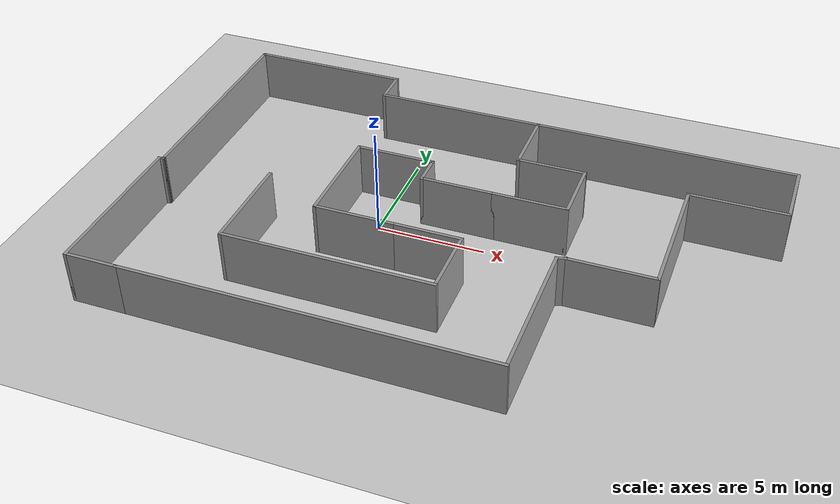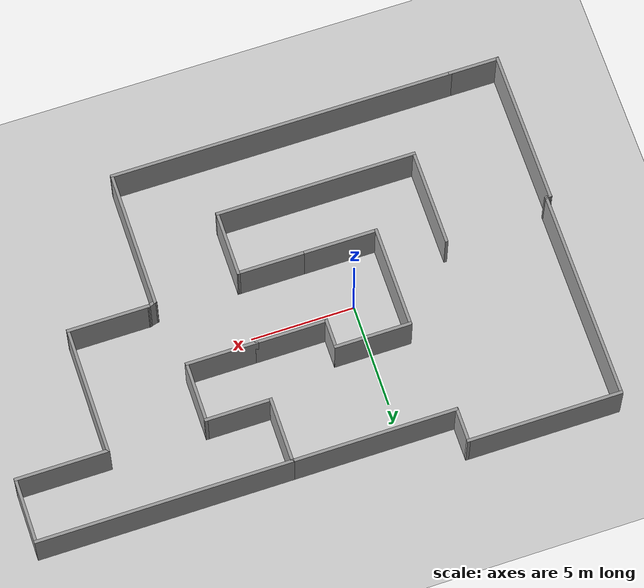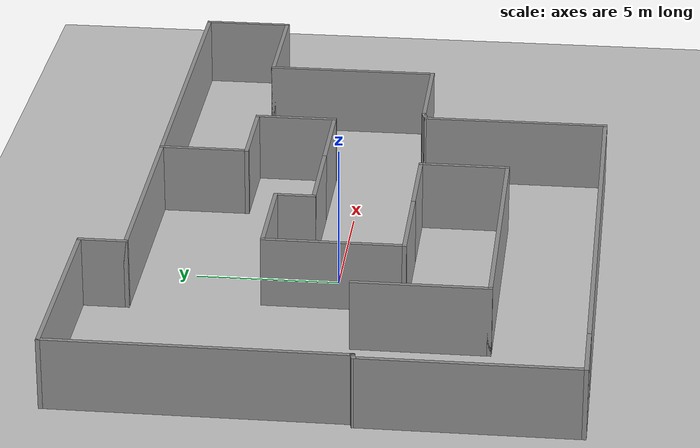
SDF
<sdf version="1.7">
 <world name="default">
  <light name="sun" type="directional">
   <pose>0 0 10 0 -0 0</pose>
   <diffuse>0.8 0.8 0.8 1</diffuse>
   <specular>0.2 0.2 0.2 1</specular>
   <attenuation>
    <range>1000</range>
    <constant>0.9</constant>
    <linear>0.01</linear>
    <quadratic>0.001</quadratic>
   </attenuation>
   <direction>-0.5 0.1 -0.9</direction>
   <spot><inner_angle>0</inner_angle><outer_angle>0</outer_angle><falloff>0</falloff></spot>
  </light>
  <model name="ground_plane">
   <static>1</static>
   <link name="link">
    <collision name="collision">
     <geometry><plane><normal>0 0 1</normal><size>100 100</size></plane></geometry>
     <surface><friction><ode><mu>100</mu><mu2>50</mu2></ode></friction></surface>
    </collision>
    <visual name="visual">
     <cast_shadows>0</cast_shadows>
     <geometry><plane><normal>0 0 1</normal><size>100 100</size></plane></geometry>
     <material>
      <script><uri>file://media/materials/scripts/gazebo.material</uri><name>Gazebo/Grey</name></script>
     </material>
    </visual>
   </link>
  </model>
  <gravity>0 0 -9.8</gravity>
  <magnetic_field>6e-06 2.3e-05 -4.2e-05</magnetic_field>
  <atmosphere type="adiabatic"/>
  <physics type="ode">
   <max_step_size>0.001</max_step_size>
   <real_time_factor>1</real_time_factor>
   <real_time_update_rate>1000</real_time_update_rate>
  </physics>
  <scene><ambient>0.4 0.4 0.4 1</ambient><background>0.7 0.7 0.7 1</background><shadows>1</shadows></scene>
  <audio><device>default</device></audio>
  <spherical_coordinates>
   <surface_model>EARTH_WGS84</surface_model>
   <latitude_deg>0</latitude_deg>
   <longitude_deg>0</longitude_deg>
   <elevation>0</elevation>
   <heading_deg>0</heading_deg>
  </spherical_coordinates>
  <model name="Untitled">
   <pose>3.65462 -0.130618 0 0 -0 0</pose>
   <link name="Wall_0">
    <collision name="Wall_0_Collision">
     <geometry><box><size>3.75 0.15 2.5</size></box></geometry>
     <pose>0 0 1.25 0 -0 0</pose>
    </collision>
    <visual name="Wall_0_Visual">
     <pose>0 0 1.25 0 -0 0</pose>
     <geometry><box><size>3.75 0.15 2.5</size></box></geometry>
     <material>
      <script><uri>file://media/materials/scripts/gazebo.material</uri><name>Gazebo/Grey</name></script>
      <ambient>1 1 1 1</ambient>
     </material>
     <meta><layer>0</layer></meta>
    </visual>
    <pose>-3.74462 -2.29938 0 0 -0 3.14159</pose>
   </link>
   <link name="Wall_1">
    <collision name="Wall_1_Collision">
     <geometry><box><size>5 0.15 2.5</size></box></geometry>
     <pose>0 0 1.25 0 -0 0</pose>
    </collision>
    <visual name="Wall_1_Visual">
     <pose>0 0 1.25 0 -0 0</pose>
     <geometry><box><size>5 0.15 2.5</size></box></geometry>
     <material>
      <script><uri>file://media/materials/scripts/gazebo.material</uri><name>Gazebo/Grey</name></script>
      <ambient>1 1 1 1</ambient>
     </material>
     <meta><layer>0</layer></meta>
    </visual>
    <pose>-5.54462 0.125618 0 0 -0 1.5708</pose>
   </link>
   <link name="Wall_11">
    <collision name="Wall_11_Collision">
     <geometry><box><size>3.5 0.15 2.5</size></box></geometry>
     <pose>0 0 1.25 0 -0 0</pose>
    </collision>
    <visual name="Wall_11_Visual">
     <pose>0 0 1.25 0 -0 0</pose>
     <geometry><box><size>3.5 0.15 2.5</size></box></geometry>
     <material>
      <script><uri>file://media/materials/scripts/gazebo.material</uri><name>Gazebo/Grey</name></script>
      <ambient>1 1 1 1</ambient>
     </material>
     <meta><layer>0</layer></meta>
    </visual>
    <pose>3.08039 1.20062 0 0 -0 0</pose>
   </link>
   <link name="Wall_12">
    <collision name="Wall_12_Collision">
     <geometry><box><size>3 0.15 2.5</size></box></geometry>
     <pose>0 0 1.25 0 -0 0</pose>
    </collision>
    <visual name="Wall_12_Visual">
     <pose>0 0 1.25 0 -0 0</pose>
     <geometry><box><size>3 0.15 2.5</size></box></geometry>
     <material>
      <script><uri>file://media/materials/scripts/gazebo.material</uri><name>Gazebo/Grey</name></script>
      <ambient>1 1 1 1</ambient>
     </material>
     <meta><layer>0</layer></meta>
    </visual>
    <pose>4.75539 2.62562 0 0 -0 1.5708</pose>
   </link>
   <link name="Wall_13">
    <collision name="Wall_13_Collision">
     <geometry><box><size>3.25 0.15 2.5</size></box></geometry>
     <pose>0 0 1.25 0 -0 0</pose>
    </collision>
    <visual name="Wall_13_Visual">
     <pose>0 0 1.25 0 -0 0</pose>
     <geometry><box><size>3.25 0.15 2.5</size></box></geometry>
     <material>
      <script><uri>file://media/materials/scripts/gazebo.material</uri><name>Gazebo/Grey</name></script>
      <ambient>1 1 1 1</ambient>
     </material>
     <meta><layer>0</layer></meta>
    </visual>
    <pose>3.20539 4.05062 0 0 -0 3.14159</pose>
   </link>
   <link name="Wall_14">
    <collision name="Wall_14_Collision">
     <geometry><box><size>3.25 0.15 2.5</size></box></geometry>
     <pose>0 0 1.25 0 -0 0</pose>
    </collision>
    <visual name="Wall_14_Visual">
     <pose>0 0 1.25 0 -0 0</pose>
     <geometry><box><size>3.25 0.15 2.5</size></box></geometry>
     <material>
      <script><uri>file://media/materials/scripts/gazebo.material</uri><name>Gazebo/Grey</name></script>
      <ambient>1 1 1 1</ambient>
     </material>
     <meta><layer>0</layer></meta>
    </visual>
    <pose>1.65539 5.60062 0 0 -0 1.5708</pose>
   </link>
   <link name="Wall_16">
    <collision name="Wall_16_Collision">
     <geometry><box><size>6.75 0.15 2.5</size></box></geometry>
     <pose>0 0 1.25 0 -0 0</pose>
    </collision>
    <visual name="Wall_16_Visual">
     <pose>0 0 1.25 0 -0 0</pose>
     <geometry><box><size>6.75 0.15 2.5</size></box></geometry>
     <material>
      <script><uri>file://media/materials/scripts/gazebo.material</uri><name>Gazebo/Grey</name></script>
      <ambient>1 1 1 1</ambient>
     </material>
     <meta><layer>0</layer></meta>
    </visual>
    <pose>5.21127 -5.45062 0 0 -0 -1.5708</pose>
   </link>
   <link name="Wall_17">
    <collision name="Wall_17_Collision">
     <geometry><box><size>16.75 0.15 2.5</size></box></geometry>
     <pose>0 0 1.25 0 -0 0</pose>
    </collision>
    <visual name="Wall_17_Visual">
     <pose>0 0 1.25 0 -0 0</pose>
     <geometry><box><size>16.75 0.15 2.5</size></box></geometry>
     <material>
      <script><uri>file://media/materials/scripts/gazebo.material</uri><name>Gazebo/Grey</name></script>
      <ambient>1 1 1 1</ambient>
     </material>
     <meta><layer>0</layer></meta>
    </visual>
    <pose>-3.08873 -8.75062 0 0 -0 3.14159</pose>
   </link>
   <link name="Wall_18">
    <collision name="Wall_18_Collision">
     <geometry><box><size>2.5 0.15 2.5</size></box></geometry>
     <pose>0 0 1.25 0 -0 0</pose>
    </collision>
    <visual name="Wall_18_Visual">
     <pose>0 0 1.25 0 -0 0</pose>
     <geometry><box><size>2.5 0.15 2.5</size></box></geometry>
     <material>
      <script><uri>file://media/materials/scripts/gazebo.material</uri><name>Gazebo/Grey</name></script>
      <ambient>1 1 1 1</ambient>
     </material>
     <meta><layer>0</layer></meta>
    </visual>
    <pose>-12.5637 -8.75062 0 0 -0 3.14159</pose>
   </link>
   <link name="Wall_19">
    <collision name="Wall_19_Collision">
     <geometry><box><size>7.5 0.15 2.5</size></box></geometry>
     <pose>0 0 1.25 0 -0 0</pose>
    </collision>
    <visual name="Wall_19_Visual">
     <pose>0 0 1.25 0 -0 0</pose>
     <geometry><box><size>7.5 0.15 2.5</size></box></geometry>
     <material>
      <script><uri>file://media/materials/scripts/gazebo.material</uri><name>Gazebo/Grey</name></script>
      <ambient>1 1 1 1</ambient>
     </material>
     <meta><layer>0</layer></meta>
    </visual>
    <pose>-13.7387 -5.07562 0 0 -0 1.5708</pose>
   </link>
   <link name="Wall_2">
    <collision name="Wall_2_Collision">
     <geometry><box><size>3.75 0.15 2.5</size></box></geometry>
     <pose>0 0 1.25 0 -0 0</pose>
    </collision>
    <visual name="Wall_2_Visual">
     <pose>0 0 1.25 0 -0 0</pose>
     <geometry><box><size>3.75 0.15 2.5</size></box></geometry>
     <material>
      <script><uri>file://media/materials/scripts/gazebo.material</uri><name>Gazebo/Grey</name></script>
      <ambient>1 1 1 1</ambient>
     </material>
     <meta><layer>0</layer></meta>
    </visual>
    <pose>-3.74462 2.55062 0 0 -0 0</pose>
   </link>
   <link name="Wall_22">
    <collision name="Wall_22_Collision">
     <geometry><box><size>12.25 0.15 2.5</size></box></geometry>
     <pose>0 0 1.25 0 -0 0</pose>
    </collision>
    <visual name="Wall_22_Visual">
     <pose>0 0 1.25 0 -0 0</pose>
     <geometry><box><size>12.25 0.15 2.5</size></box></geometry>
     <material>
      <script><uri>file://media/materials/scripts/gazebo.material</uri><name>Gazebo/Grey</name></script>
      <ambient>1 1 1 1</ambient>
     </material>
     <meta><layer>0</layer></meta>
    </visual>
    <pose>7.70538 7.15062 0 0 -0 0</pose>
   </link>
   <link name="Wall_23">
    <collision name="Wall_23_Collision">
     <geometry><box><size>3.25 0.15 2.5</size></box></geometry>
     <pose>0 0 1.25 0 -0 0</pose>
    </collision>
    <visual name="Wall_23_Visual">
     <pose>0 0 1.25 0 -0 0</pose>
     <geometry><box><size>3.25 0.15 2.5</size></box></geometry>
     <material>
      <script><uri>file://media/materials/scripts/gazebo.material</uri><name>Gazebo/Grey</name></script>
      <ambient>1 1 1 1</ambient>
     </material>
     <meta><layer>0</layer></meta>
    </visual>
    <pose>13.7554 5.60062 0 0 -0 -1.5708</pose>
   </link>
   <link name="Wall_24">
    <collision name="Wall_24_Collision">
     <geometry><box><size>4.5 0.15 2.5</size></box></geometry>
     <pose>0 0 1.25 0 -0 0</pose>
    </collision>
    <visual name="Wall_24_Visual">
     <pose>0 0 1.25 0 -0 0</pose>
     <geometry><box><size>4.5 0.15 2.5</size></box></geometry>
     <material>
      <script><uri>file://media/materials/scripts/gazebo.material</uri><name>Gazebo/Grey</name></script>
      <ambient>1 1 1 1</ambient>
     </material>
     <meta><layer>0</layer></meta>
    </visual>
    <pose>11.5804 4.05062 0 0 -0 3.14159</pose>
   </link>
   <link name="Wall_25">
    <collision name="Wall_25_Collision">
     <geometry><box><size>6.25 0.15 2.5</size></box></geometry>
     <pose>0 0 1.25 0 -0 0</pose>
    </collision>
    <visual name="Wall_25_Visual">
     <pose>0 0 1.25 0 -0 0</pose>
     <geometry><box><size>6.25 0.15 2.5</size></box></geometry>
     <material>
      <script><uri>file://media/materials/scripts/gazebo.material</uri><name>Gazebo/Grey</name></script>
      <ambient>1 1 1 1</ambient>
     </material>
     <meta><layer>0</layer></meta>
    </visual>
    <pose>9.40539 1.00062 0 0 -0 -1.5708</pose>
   </link>
   <link name="Wall_26">
    <collision name="Wall_26_Collision">
     <geometry><box><size>4 0.15 2.5</size></box></geometry>
     <pose>0 0 1.25 0 -0 0</pose>
    </collision>
    <visual name="Wall_26_Visual">
     <pose>0 0 1.25 0 -0 0</pose>
     <geometry><box><size>4 0.15 2.5</size></box></geometry>
     <material>
      <script><uri>file://media/materials/scripts/gazebo.material</uri><name>Gazebo/Grey</name></script>
      <ambient>1 1 1 1</ambient>
     </material>
     <meta><layer>0</layer></meta>
    </visual>
    <pose>7.48039 -2.04938 0 0 -0 3.14159</pose>
   </link>
   <link name="Wall_28">
    <collision name="Wall_28_Collision">
     <geometry><box><size>0.508696 0.15 2.5</size></box></geometry>
     <pose>0 0 1.25 0 -0 0</pose>
    </collision>
    <visual name="Wall_28_Visual">
     <pose>0 0 1.25 0 -0 0</pose>
     <geometry><box><size>0.508696 0.15 2.5</size></box></geometry>
     <material>
      <script><uri>file://media/materials/scripts/gazebo.material</uri><name>Gazebo/Grey</name></script>
      <ambient>1 1 1 1</ambient>
     </material>
     <meta><layer>0</layer></meta>
    </visual>
    <pose>5.38333 -2.1 0 0 -0 0.286122</pose>
   </link>
   <link name="Wall_3">
    <collision name="Wall_3_Collision">
     <geometry><box><size>1.5 0.15 2.5</size></box></geometry>
     <pose>0 0 1.25 0 -0 0</pose>
    </collision>
    <visual name="Wall_3_Visual">
     <pose>0 0 1.25 0 -0 0</pose>
     <geometry><box><size>1.5 0.15 2.5</size></box></geometry>
     <material>
      <script><uri>file://media/materials/scripts/gazebo.material</uri><name>Gazebo/Grey</name></script>
      <ambient>1 1 1 1</ambient>
     </material>
     <meta><layer>0</layer></meta>
    </visual>
    <pose>-1.94461 1.87562 0 0 -0 -1.5708</pose>
   </link>
   <link name="Wall_31">
    <collision name="Wall_31_Collision">
     <geometry><box><size>8 0.15 2.5</size></box></geometry>
     <pose>0 0 1.25 0 -0 0</pose>
    </collision>
    <visual name="Wall_31_Visual">
     <pose>0 0 1.25 0 -0 0</pose>
     <geometry><box><size>8 0.15 2.5</size></box></geometry>
     <material>
      <script><uri>file://media/materials/scripts/gazebo.material</uri><name>Gazebo/Grey</name></script>
      <ambient>1 1 1 1</ambient>
     </material>
     <meta><layer>0</layer></meta>
    </visual>
    <pose>-2.26961 7.15062 0 0 -0 3.14159</pose>
   </link>
   <link name="Wall_32">
    <collision name="Wall_32_Collision">
     <geometry><box><size>1.75 0.15 2.5</size></box></geometry>
     <pose>0 0 1.25 0 -0 0</pose>
    </collision>
    <visual name="Wall_32_Visual">
     <pose>0 0 1.25 0 -0 0</pose>
     <geometry><box><size>1.75 0.15 2.5</size></box></geometry>
     <material>
      <script><uri>file://media/materials/scripts/gazebo.material</uri><name>Gazebo/Grey</name></script>
      <ambient>1 1 1 1</ambient>
     </material>
     <meta><layer>0</layer></meta>
    </visual>
    <pose>-6.19461 7.95062 0 0 -0 1.5708</pose>
   </link>
   <link name="Wall_33">
    <collision name="Wall_33_Collision">
     <geometry><box><size>7.5 0.15 2.5</size></box></geometry>
     <pose>0 0 1.25 0 -0 0</pose>
    </collision>
    <visual name="Wall_33_Visual">
     <pose>0 0 1.25 0 -0 0</pose>
     <geometry><box><size>7.5 0.15 2.5</size></box></geometry>
     <material>
      <script><uri>file://media/materials/scripts/gazebo.material</uri><name>Gazebo/Grey</name></script>
      <ambient>1 1 1 1</ambient>
     </material>
     <meta><layer>0</layer></meta>
    </visual>
    <pose>-9.86961 8.75062 0 0 -0 3.14159</pose>
   </link>
   <link name="Wall_34">
    <collision name="Wall_34_Collision">
     <geometry><box><size>10.25 0.15 2.5</size></box></geometry>
     <pose>0 0 1.25 0 -0 0</pose>
    </collision>
    <visual name="Wall_34_Visual">
     <pose>0 0 1.25 0 -0 0</pose>
     <geometry><box><size>10.25 0.15 2.5</size></box></geometry>
     <material>
      <script><uri>file://media/materials/scripts/gazebo.material</uri><name>Gazebo/Grey</name></script>
      <ambient>1 1 1 1</ambient>
     </material>
     <meta><layer>0</layer></meta>
    </visual>
    <pose>-13.5446 3.70062 0 0 -0 -1.5708</pose>
   </link>
   <link name="Wall_35">
    <collision name="Wall_35_Collision">
     <geometry><box><size>0.15 0.15 2.5</size></box></geometry>
     <pose>0 0 1.25 0 -0 0</pose>
    </collision>
    <visual name="Wall_35_Visual">
     <pose>0 0 1.25 0 -0 0</pose>
     <geometry><box><size>0.15 0.15 2.5</size></box></geometry>
     <material>
      <script><uri>file://media/materials/scripts/gazebo.material</uri><name>Gazebo/Grey</name></script>
      <ambient>1 1 1 1</ambient>
     </material>
     <meta><layer>0</layer></meta>
    </visual>
    <pose>-13.5446 -1.34938 0 0 -0 0</pose>
   </link>
   <link name="Wall_36">
    <collision name="Wall_36_Collision">
     <geometry><box><size>0.15 0.15 2.5</size></box></geometry>
     <pose>0 0 1.25 0 -0 0</pose>
    </collision>
    <visual name="Wall_36_Visual">
     <pose>0 0 1.25 0 -0 0</pose>
     <geometry><box><size>0.15 0.15 2.5</size></box></geometry>
     <material>
      <script><uri>file://media/materials/scripts/gazebo.material</uri><name>Gazebo/Grey</name></script>
      <ambient>1 1 1 1</ambient>
     </material>
     <meta><layer>0</layer></meta>
    </visual>
    <pose>-13.5446 -1.34938 0 0 -0 0</pose>
   </link>
   <link name="Wall_37">
    <collision name="Wall_37_Collision">
     <geometry><box><size>0.350762 0.15 2.5</size></box></geometry>
     <pose>0 0 1.25 0 -0 0</pose>
    </collision>
    <visual name="Wall_37_Visual">
     <pose>0 0 1.25 0 -0 0</pose>
     <geometry><box><size>0.350762 0.15 2.5</size></box></geometry>
     <material>
      <script><uri>file://media/materials/scripts/gazebo.material</uri><name>Gazebo/Grey</name></script>
      <ambient>1 1 1 1</ambient>
     </material>
     <meta><layer>0</layer></meta>
    </visual>
    <pose>-13.6417 -1.375 0 0 -0 -2.88353</pose>
   </link>
   <link name="Wall_4">
    <collision name="Wall_4_Collision">
     <geometry><box><size>3.5 0.15 2.5</size></box></geometry>
     <pose>0 0 1.25 0 -0 0</pose>
    </collision>
    <visual name="Wall_4_Visual">
     <pose>0 0 1.25 0 -0 0</pose>
     <geometry><box><size>3.5 0.15 2.5</size></box></geometry>
     <material>
      <script><uri>file://media/materials/scripts/gazebo.material</uri><name>Gazebo/Grey</name></script>
      <ambient>1 1 1 1</ambient>
     </material>
     <meta><layer>0</layer></meta>
    </visual>
    <pose>-0.269615 1.20062 0 0 -0 0</pose>
   </link>
   <link name="Wall_6">
    <collision name="Wall_6_Collision">
     <geometry><box><size>3.25 0.15 2.5</size></box></geometry>
     <pose>0 0 1.25 0 -0 0</pose>
    </collision>
    <visual name="Wall_6_Visual">
     <pose>0 0 1.25 0 -0 0</pose>
     <geometry><box><size>3.25 0.15 2.5</size></box></geometry>
     <material>
      <script><uri>file://media/materials/scripts/gazebo.material</uri><name>Gazebo/Grey</name></script>
      <ambient>1 1 1 1</ambient>
     </material>
     <meta><layer>0</layer></meta>
    </visual>
    <pose>-0.394615 -2.29938 0 0 -0 0</pose>
   </link>
   <link name="Wall_7">
    <collision name="Wall_7_Collision">
     <geometry><box><size>3.25 0.15 2.5</size></box></geometry>
     <pose>0 0 1.25 0 -0 0</pose>
    </collision>
    <visual name="Wall_7_Visual">
     <pose>0 0 1.25 0 -0 0</pose>
     <geometry><box><size>3.25 0.15 2.5</size></box></geometry>
     <material>
      <script><uri>file://media/materials/scripts/gazebo.material</uri><name>Gazebo/Grey</name></script>
      <ambient>1 1 1 1</ambient>
     </material>
     <meta><layer>0</layer></meta>
    </visual>
    <pose>1.15539 -3.84938 0 0 -0 -1.5708</pose>
   </link>
   <link name="Wall_8">
    <collision name="Wall_8_Collision">
     <geometry><box><size>9.75 0.15 2.5</size></box></geometry>
     <pose>0 0 1.25 0 -0 0</pose>
    </collision>
    <visual name="Wall_8_Visual">
     <pose>0 0 1.25 0 -0 0</pose>
     <geometry><box><size>9.75 0.15 2.5</size></box></geometry>
     <material>
      <script><uri>file://media/materials/scripts/gazebo.material</uri><name>Gazebo/Grey</name></script>
      <ambient>1 1 1 1</ambient>
     </material>
     <meta><layer>0</layer></meta>
    </visual>
    <pose>-3.64461 -5.39938 0 0 -0 3.14159</pose>
   </link>
   <link name="Wall_9">
    <collision name="Wall_9_Collision">
     <geometry><box><size>4.75 0.15 2.5</size></box></geometry>
     <pose>0 0 1.25 0 -0 0</pose>
    </collision>
    <visual name="Wall_9_Visual">
     <pose>0 0 1.25 0 -0 0</pose>
     <geometry><box><size>4.75 0.15 2.5</size></box></geometry>
     <material>
      <script><uri>file://media/materials/scripts/gazebo.material</uri><name>Gazebo/Grey</name></script>
      <ambient>1 1 1 1</ambient>
     </material>
     <meta><layer>0</layer></meta>
    </visual>
    <pose>-8.44462 -3.09938 0 0 -0 1.5708</pose>
   </link>
   <static>1</static>
  </model>
 </world>
</sdf>
